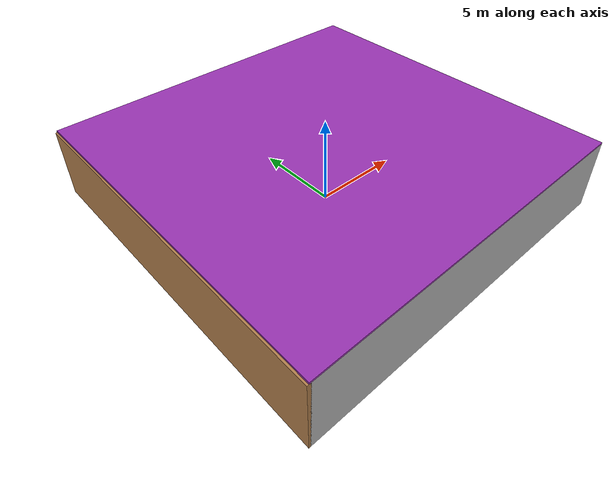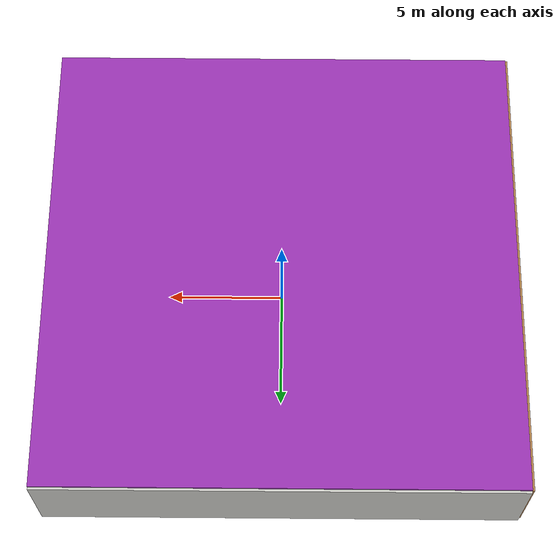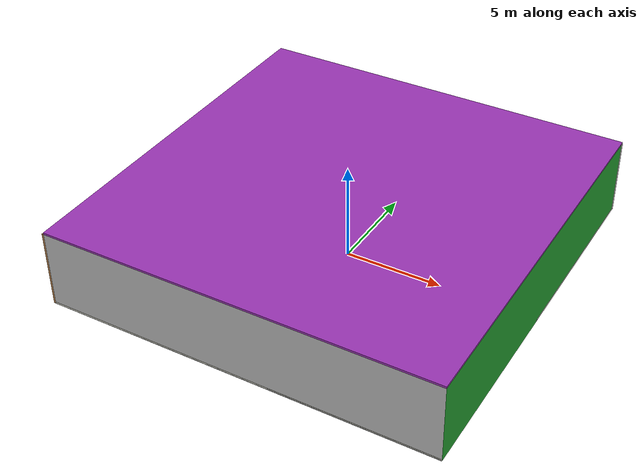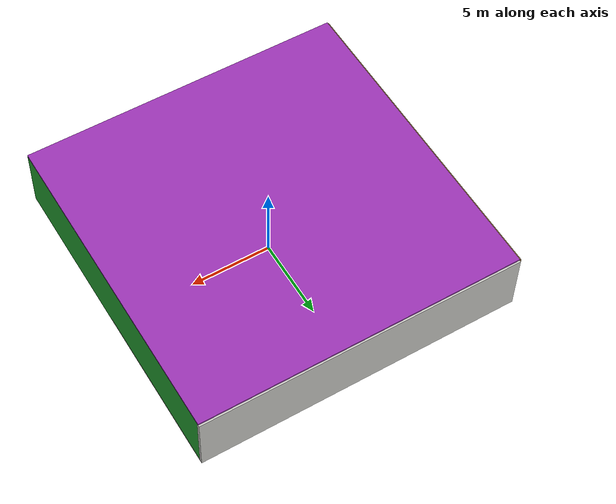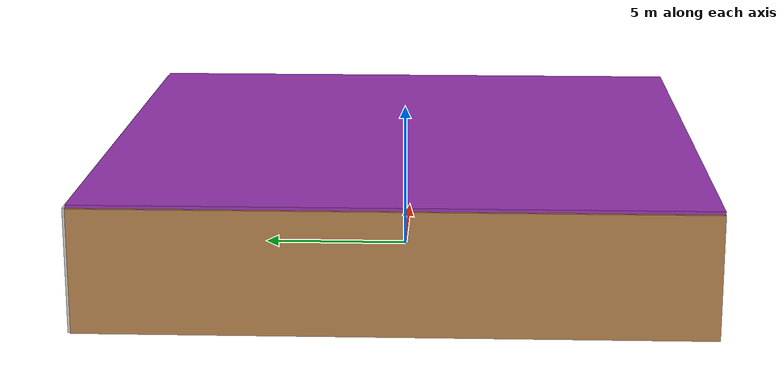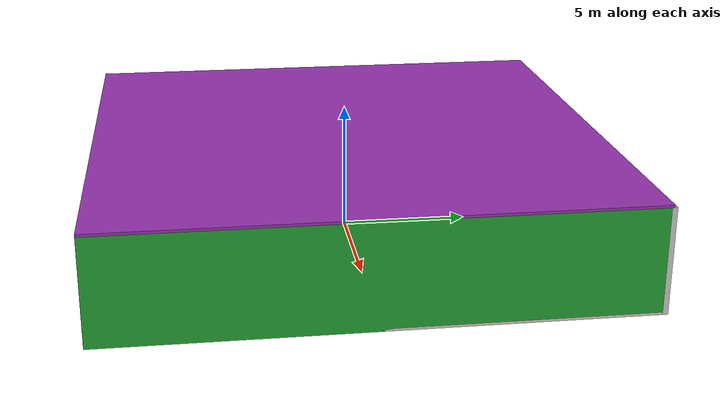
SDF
<sdf version="1.4">
 <world name="default">
  <physics type="ode">
   <max_step_size>0.001</max_step_size>
   <real_time_factor>1</real_time_factor>
   <real_time_update_rate>1000</real_time_update_rate>
   <gravity>0 0 -9.8</gravity>
  </physics>
  <scene><ambient>0.4 0.4 0.4 1</ambient><background>0.7 0.7 0.7 1</background><shadows>1</shadows></scene>
  <model name="Surrounding">
   <static>1</static>
   <link name="Ceiling">
    <collision name="Ceiling_Collision"><geometry><box><size>20 20 0.1</size></box></geometry></collision>
    <visual name="Ceiling_Visual">
     <geometry><box><size>20 20 0.1</size></box></geometry>
     <material>
      <script><uri>file://media/materials/scripts/gazebo.material</uri><name>Gazebo/PurpleGlow</name></script>
     </material>
    </visual>
    <pose>0 0 4.05 0 0 0</pose>
   </link>
   <link name="Wall_South">
    <collision name="Wall_South_Collision">
     <geometry><box><size>20 0 4</size></box></geometry>
     <pose>0 0 2 0 -0 0</pose>
    </collision>
    <visual name="Wall_South_Visual">
     <pose>0 0 2 0 -0 0</pose>
     <geometry><box><size>20 0 4</size></box></geometry>
     <material>
      <script><uri>file://media/materials/scripts/gazebo.material</uri><name>Gazebo/LightOff</name></script>
     </material>
    </visual>
    <velocity_decay><linear>0</linear><angular>0</angular></velocity_decay>
    <pose>0 -10 0 0 -0 0</pose>
   </link>
   <link name="Wall_East">
    <collision name="Wall_21_Collision">
     <geometry><box><size>20 0 4</size></box></geometry>
     <pose>0 0 2 0 -0 0</pose>
    </collision>
    <visual name="Wall_21_Visual">
     <pose>0 0 2 0 -0 0</pose>
     <geometry><box><size>20 0 4</size></box></geometry>
     <material>
      <script><uri>file://media/materials/scripts/gazebo.material</uri><name>Gazebo/GreenGlow</name></script>
     </material>
    </visual>
    <velocity_decay><linear>0</linear><angular>0</angular></velocity_decay>
    <pose>10 0 0 0 -0 1.5708</pose>
   </link>
   <link name="Wall_North">
    <collision name="Wall_22_Collision">
     <geometry><box><size>20 0.2 4</size></box></geometry>
     <pose>0 0 2 0 -0 0</pose>
    </collision>
    <visual name="Wall_22_Visual">
     <pose>0 0 2 0 -0 0</pose>
     <geometry><box><size>20 0.2 4</size></box></geometry>
     <material>
      <script><uri>file://media/materials/scripts/gazebo.material</uri><name>Gazebo/CeilingTiled</name></script>
     </material>
    </visual>
    <velocity_decay><linear>0</linear><angular>0</angular></velocity_decay>
    <pose>0 10 0 0 -0 0</pose>
   </link>
   <link name="Wall_West">
    <collision name="Wall_23_Collision">
     <geometry><box><size>20 0.2 4</size></box></geometry>
     <pose>0 0 2 0 -0 0</pose>
    </collision>
    <visual name="Wall_23_Visual">
     <pose>0 0 2 0 -0 0</pose>
     <geometry><box><size>20 0.2 4</size></box></geometry>
     <material>
      <script><uri>file://media/materials/scripts/gazebo.material</uri><name>Gazebo/WoodPallet</name></script>
     </material>
    </visual>
    <velocity_decay><linear>0</linear><angular>0</angular></velocity_decay>
    <pose>-10 0 0 0 0 -1.5708</pose>
   </link>
   <link name="Ground_link">
    <collision name="collision">
     <pose>0 0 .05 0 -0 0</pose>
     <geometry><box><size>20 20 0.1</size></box></geometry>
    </collision>
    <visual name="visual">
     <pose>0 0 .05 0 -0 0</pose>
     <geometry><box><size>20 20 0.1</size></box></geometry>
     <material>
      <script><uri>file://media/materials/scripts/gazebo.material</uri><name>Gazebo/PaintedWall</name></script>
     </material>
    </visual>
   </link>
   <static>1</static>
  </model>
  <spherical_coordinates>
   <surface_model>EARTH_WGS84</surface_model>
   <latitude_deg>0</latitude_deg>
   <longitude_deg>0</longitude_deg>
   <elevation>0</elevation>
   <heading_deg>0</heading_deg>
  </spherical_coordinates>
  <light name="lightball_0" type="diffuse">
   <diffuse>0.8 0.8 0.8 1</diffuse>
   <specular>0.2 0.2 0.2 1</specular>
   <attenuation>
    <range>100</range>
    <constant>0.7</constant>
    <linear>0.01</linear>
    <quadratic>0.001</quadratic>
   </attenuation>
   <direction>-0.5 0.1 -0.9</direction>
   <pose>-6.69292343178 -7.30086581966 0.785614542277 0 0 0</pose>
  </light>
  <light name="lightball_1" type="diffuse">
   <diffuse>0.8 0.8 0.8 1</diffuse>
   <specular>0.2 0.2 0.2 1</specular>
   <attenuation>
    <range>100</range>
    <constant>0.7</constant>
    <linear>0.01</linear>
    <quadratic>0.001</quadratic>
   </attenuation>
   <direction>-0.5 0.1 -0.9</direction>
   <pose>-8.9036598332 -5.25912701172 2.00019539121 0 0 0</pose>
  </light>
  <light name="lightball_2" type="diffuse">
   <diffuse>0.8 0.8 0.8 1</diffuse>
   <specular>0.2 0.2 0.2 1</specular>
   <attenuation>
    <range>100</range>
    <constant>0.7</constant>
    <linear>0.01</linear>
    <quadratic>0.001</quadratic>
   </attenuation>
   <direction>-0.5 0.1 -0.9</direction>
   <pose>-8.36362475668 5.41641758041 1.41876090265 0 0 0</pose>
  </light>
  <include>
   <uri>model://textured_shapes</uri>
   <pose>-3.85256344514 -4.98922631024 0 0 0 1.41434895422</pose>
  </include>
  <include>
   <uri>model://construction_cone</uri>
   <pose>-4.80818896397 0.614851547864 0 0 0 0.482537283586</pose>
  </include>
  <include><uri>model://cabinet</uri><pose>-0.499657690505 5.20824150442 0 0 0 1.01793605148</pose></include>
  <include><uri>model://cabinet</uri><pose>-1.43967987795 6.56131173765 0 0 0 0.998563609724</pose></include>
  <include>
   <uri>model://construction_cone</uri>
   <pose>2.58253110565 -5.2220600585 0 0 0 1.25846127278</pose>
  </include>
  <include>
   <uri>model://robocup_3Dsim_goal</uri>
   <pose>8.19213742396 -7.78852465406 0 0 0 1.17692666878</pose>
  </include>
 </world>
</sdf>

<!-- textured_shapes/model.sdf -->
<sdf version="1.6">
  <model name="textured_shapes">
    <pose>0 0 0.5 0 0 0</pose>
    <link name="box">
      <pose>0 -1.5 0 0 0 0</pose>
      <collision name="collision">
        <geometry>
          <box>
            <size>1 1 1</size>
          </box>
        </geometry>
      </collision>
      <visual name="visual">
        <geometry>
          <box>
            <size>1 1 1</size>
          </box>
        </geometry>
        <material>
          <script>
            <uri>model://../model_source/models/textured_shapes/materials/scripts</uri>
            <uri>model://../model_source/models/textured_shapes/materials/textures</uri>
            <name>TexturedShape/Squares</name>
          </script>
        </material>
      </visual>
    </link>
    <link name="sphere">
      <collision name="collision">
        <geometry>
          <sphere>
            <radius>0.5</radius>
          </sphere>
        </geometry>
      </collision>
      <visual name="visual">
        <geometry>
          <sphere>
            <radius>0.5</radius>
          </sphere>
        </geometry>
        <material>
          <script>
            <uri>model://../model_source/models/textured_shapes/materials/scripts</uri>
            <uri>model://../model_source/models/textured_shapes/materials/textures</uri>
            <name>TexturedShape/Squares</name>
          </script>
        </material>
      </visual>
    </link>
    <link name="cylinder">
      <pose>0 1.5 0 0 0 0</pose>
      <collision name="collision">
        <geometry>
          <cylinder>
            <radius>0.5</radius>
            <length>1</length>
          </cylinder>
        </geometry>
      </collision>
      <visual name="visual">
        <geometry>
          <cylinder>
            <radius>0.5</radius>
            <length>1</length>
          </cylinder>
        </geometry>
        <material>
          <script>
            <uri>model://../model_source/models/textured_shapes/materials/scripts</uri>
            <uri>model://../model_source/models/textured_shapes/materials/textures</uri>
            <name>TexturedShape/Squares</name>
          </script>
        </material>
      </visual>
    </link>
  </model>
</sdf>

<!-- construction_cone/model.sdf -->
<sdf version="1.5">
  <model name="Construction Cone">
    <link name="link">
      <collision name="collision">
        <geometry>
          <mesh>
            <scale>10 10 10</scale>
            <uri>file://isr-testbed/construction_cone/meshes/construction_cone.dae</uri>
          </mesh>
        </geometry>
      </collision>
      <visual name="visual">
        <geometry>
          <mesh>
            <scale>10 10 10</scale>
            <uri>file://isr-testbed/construction_cone/meshes/construction_cone.dae</uri>
          </mesh>
        </geometry>
      </visual>
    </link>
  </model>
</sdf>

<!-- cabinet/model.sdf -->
<sdf version="1.5">
  <model name="cabinet">
    <static>true</static>
    <link name="cabinet_bottom_plate">
      <inertial>
        <pose>0 0 -1 0 0 0</pose>
        <inertia>
          <ixx>2.050000</ixx>
          <ixy>0</ixy>
          <ixz>0</ixz>
          <iyy>2.050000</iyy>
          <iyz>0</iyz>
          <izz>2.050000</izz>
        </inertia>
        <mass>25.000000</mass>
      </inertial>
      <collision name="cabinet_bottom_plate_geom">
        <pose>0 0 0.010000 0 0 0</pose>
        <geometry>
          <box>
            <size>0.450000 0.450000 0.020000</size>
          </box>
        </geometry>
      </collision>
      <visual name="cabinet_bottom_plate_geom_visual">
        <pose>0 0 0.010000 0 0 0</pose>
        <geometry>
          <box>
            <size>0.450000 0.450000 0.020000</size>
          </box>
        </geometry>
        <material>
          <script>
            <uri>model://media/materials/scripts/gazebo.material</uri>
            <name>Gazebo/Wood</name>
          </script>
        </material>
      </visual>
      <collision name="cabinet_bottom_plate_geom_cabinet_back_plate">
        <pose>0.235000 0 0.510000 0 0 0</pose>
        <geometry>
          <box>
            <size>0.020000 0.450000 1.020000</size>
          </box>
        </geometry>
      </collision>
      <visual name="cabinet_bottom_plate_geom_cabinet_back_plate_visual">
        <pose>0.235000 0 0.510000 0 0 0</pose>
        <geometry>
          <box>
            <size>0.020000 0.450000 1.020000</size>
          </box>
        </geometry>
        <material>
          <script>
            <uri>model://media/materials/scripts/gazebo.material</uri>
            <name>Gazebo/Wood</name>
          </script>
        </material>
      </visual>
      <collision name="cabinet_bottom_plate_geom_cabinet_left_plate">
        <pose>0 0.235000 0.510000 0 0 0</pose>
        <geometry>
          <box>
            <size>0.450000 0.020000 1.020000</size>
          </box>
        </geometry>
      </collision>
      <visual name="cabinet_bottom_plate_geom_cabinet_left_plate_visual">
        <pose>0 0.235000 0.510000 0 0 0</pose>
        <geometry>
          <box>
            <size>0.450000 0.020000 1.020000</size>
          </box>
        </geometry>
        <material>
          <script>
            <uri>model://media/materials/scripts/gazebo.material</uri>
            <name>Gazebo/Wood</name>
          </script>
        </material>
      </visual>
      <collision name="cabinet_bottom_plate_geom_cabinet_middle_plate">
        <pose>0 0 0.510000 0 0 0</pose>
        <geometry>
          <box>
            <size>0.450000 0.450000 0.020000</size>
          </box>
        </geometry>
      </collision>
      <visual name="cabinet_bottom_plate_geom_cabinet_middle_plate_visual">
        <pose>0 0 0.510000 0 0 0</pose>
        <geometry>
          <box>
            <size>0.450000 0.450000 0.020000</size>
          </box>
        </geometry>
        <material>
          <script>
            <uri>model://media/materials/scripts/gazebo.material</uri>
            <name>Gazebo/Wood</name>
          </script>
        </material>
      </visual>
      <collision name="cabinet_bottom_plate_geom_cabinet_right_plate">
        <pose>0 -0.235000 0.510000 0 0 0</pose>
        <geometry>
          <box>
            <size>0.450000 0.020000 1.020000</size>
          </box>
        </geometry>
      </collision>
      <visual name="cabinet_bottom_plate_geom_cabinet_right_plate_visual">
        <pose>0 -0.235000 0.510000 0 0 0</pose>
        <geometry>
          <box>
            <size>0.450000 0.020000 1.020000</size>
          </box>
        </geometry>
        <material>
          <script>
            <uri>model://media/materials/scripts/gazebo.material</uri>
            <name>Gazebo/Wood</name>
          </script>
        </material>
      </visual>
      <collision name="cabinet_bottom_plate_geom_cabinet_top_plate">
        <pose>0 0 1.010000 0 0 0</pose>
        <geometry>
          <box>
            <size>0.450000 0.450000 0.020000</size>
          </box>
        </geometry>
      </collision>
      <visual name="cabinet_bottom_plate_geom_cabinet_top_plate_visual">
        <pose>0 0 1.010000 0 0 0</pose>
        <geometry>
          <box>
            <size>0.450000 0.450000 0.020000</size>
          </box>
        </geometry>
        <material>
          <script>
            <uri>model://media/materials/scripts/gazebo.material</uri>
            <name>Gazebo/Wood</name>
          </script>
        </material>
      </visual>
    </link>
  </model>
</sdf>

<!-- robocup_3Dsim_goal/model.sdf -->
<sdf version="1.5">
  <model name="robocup_3d_goal">
    <static>true</static>
    <link name="left_post">
      <pose>0 1.05 0.45 0 0 0</pose>
      <collision name="collision">
        <geometry>
          <cylinder>
            <radius>0.05</radius>
            <length>0.9</length>
          </cylinder>
        </geometry>
      </collision>
      <visual name="visual">
        <geometry>
          <cylinder>
            <radius>0.05</radius>
            <length>0.9</length>
          </cylinder>
        </geometry>
        <material>
          <script>
            <uri>file://media/materials/scripts/gazebo.material</uri>
            <name>Gazebo/ZincYellow</name>
          </script>
        </material>
      </visual>
    </link>
    <link name="left_support_horiz_lower">
      <pose>0.30 1.05 0.01 0 0 0</pose>
      <collision name="collision">
        <geometry>
          <box>
            <size>0.50 0.02 0.02</size>
          </box>
        </geometry>
      </collision>
      <visual name="visual">
        <geometry>
          <box>
            <size>0.50 0.02 0.02</size>
          </box>
        </geometry>
        <material>
          <script>
            <uri>file://media/materials/scripts/gazebo.material</uri>
            <name>Gazebo/White</name>
          </script>
        </material>
      </visual>
    </link>
    <link name="left_support_horiz_upper">
      <pose>0.30 1.05 0.79 0 0 0</pose>
      <collision name="collision">
        <geometry>
          <box>
            <size>0.50 0.02 0.02</size>
          </box>
        </geometry>
      </collision>
      <visual name="visual">
        <geometry>
          <box>
            <size>0.50 0.02 0.02</size>
          </box>
        </geometry>
        <material>
          <script>
            <uri>file://media/materials/scripts/gazebo.material</uri>
            <name>Gazebo/White</name>
          </script>
        </material>
      </visual>
    </link>
    <link name="left_support_vertical">
      <pose>0.56 1.05 0.4 0 1.5708 0</pose>
      <collision name="collision">
        <geometry>
          <box>
            <size>0.80 0.02 0.02</size>
          </box>
        </geometry>
      </collision>
      <visual name="visual">
        <geometry>
          <box>
            <size>0.80 0.02 0.02</size>
          </box>
        </geometry>
        <material>
          <script>
            <uri>file://media/materials/scripts/gazebo.material</uri>
            <name>Gazebo/White</name>
          </script>
        </material>
      </visual>
    </link>
    <link name="right_support_horiz_lower">
      <pose>0.30 -1.05 0.01 0 0 0</pose>
      <collision name="collision">
        <geometry>
          <box>
            <size>0.50 0.02 0.02</size>
          </box>
        </geometry>
      </collision>
      <visual name="visual">
        <geometry>
          <box>
            <size>0.50 0.02 0.02</size>
          </box>
        </geometry>
        <material>
          <script>
            <uri>file://media/materials/scripts/gazebo.material</uri>
            <name>Gazebo/White</name>
          </script>
        </material>
      </visual>
    </link>
    <link name="right_support_horiz_upper">
      <pose>0.30 -1.05 0.79 0 0 0</pose>
      <collision name="collision">
        <geometry>
          <box>
            <size>0.50 0.02 0.02</size>
          </box>
        </geometry>
      </collision>
      <visual name="visual">
        <geometry>
          <box>
            <size>0.50 0.02 0.02</size>
          </box>
        </geometry>
        <material>
          <script>
            <uri>file://media/materials/scripts/gazebo.material</uri>
            <name>Gazebo/White</name>
          </script>
        </material>
      </visual>
    </link>
    <link name="right_support_vertical">
      <pose>0.56 -1.05 0.4 0 1.5708 0</pose>
      <collision name="collision">
        <geometry>
          <box>
            <size>0.80 0.02 0.02</size>
          </box>
        </geometry>
      </collision>
      <visual name="visual">
        <geometry>
          <box>
            <size>0.80 0.02 0.02</size>
          </box>
        </geometry>
        <material>
          <script>
            <uri>file://media/materials/scripts/gazebo.material</uri>
            <name>Gazebo/White</name>
          </script>
        </material>
      </visual>
    </link>
    <link name="center_support_horiz_lower">
      <pose>0.56 0 0.01 0 1.5708 0</pose>
      <collision name="collision">
        <geometry>
          <box>
            <size>0.02 2.08 0.02</size>
          </box>
        </geometry>
      </collision>
      <visual name="visual">
        <geometry>
          <box>
            <size>0.02 2.08 0.02</size>
          </box>
        </geometry>
        <material>
          <script>
            <uri>file://media/materials/scripts/gazebo.material</uri>
            <name>Gazebo/White</name>
          </script>
        </material>
      </visual>
    </link>
    <link name="center_support_horiz_upper">
      <pose>0.56 0 0.79 0 1.5708 0</pose>
      <collision name="collision">
        <geometry>
          <box>
            <size>0.02 2.08 0.02</size>
          </box>
        </geometry>
      </collision>
      <visual name="visual">
        <geometry>
          <box>
            <size>0.02 2.08 0.02</size>
          </box>
        </geometry>
        <material>
          <script>
            <uri>file://media/materials/scripts/gazebo.material</uri>
            <name>Gazebo/White</name>
          </script>
        </material>
      </visual>
    </link>
    <link name="right_post">
      <pose>0 -1.05 0.45 0 0 0</pose>
      <collision name="collision">
        <geometry>
          <cylinder>
            <radius>0.05</radius>
            <length>0.9</length>
          </cylinder>
        </geometry>
      </collision>
      <visual name="visual">
        <geometry>
          <cylinder>
            <radius>0.05</radius>
            <length>0.9</length>
          </cylinder>
        </geometry>
        <material>
          <script>
            <uri>file://media/materials/scripts/gazebo.material</uri>
            <name>Gazebo/ZincYellow</name>
          </script>
        </material>
      </visual>
    </link>
    <link name="crossbar">
      <pose>0 0 0.85 1.57 1.57 0</pose>
      <collision name="collision">
        <geometry>
          <cylinder>
            <radius>0.05</radius>
            <length>2.0</length>
          </cylinder>
        </geometry>
      </collision>
      <visual name="visual">
        <geometry>
          <cylinder>
            <radius>0.05</radius>
            <length>2.0</length>
          </cylinder>
        </geometry>
        <material>
          <script>
            <uri>file://media/materials/scripts/gazebo.material</uri>
            <name>Gazebo/ZincYellow</name>
          </script>
        </material>
      </visual>
    </link>
    <link name="center_net">
      <pose>0.56 0 0.40 0 0 0</pose>
      <collision name="collision">
        <geometry>
          <box>
            <size>0.01 2.1 0.80</size>
          </box>
        </geometry>
      </collision>
      <visual name="visual">
        <geometry>
          <box>
            <size>0.01 2.1 0.80</size>
          </box>
        </geometry>
        <material>
          <script>
            <uri>model://../model_source/models/robocup09_spl_field/materials/scripts/</uri>
            <uri>model://../model_source/models/robocup09_spl_field/materials/textures/</uri>
            <name>RoboCup/Net</name>
          </script>
        </material>
      </visual>
    </link>
    <link name="left_net">
      <pose>0.30 1.05 0.40 0 0 0</pose>
      <collision name="collision">
        <geometry>
          <box>
            <size>0.50 0.01 0.76</size>
          </box>
        </geometry>
      </collision>
      <visual name="visual">
        <geometry>
          <box>
            <size>0.50 0.01 0.76</size>
          </box>
        </geometry>
        <material>
          <script>
            <uri>model://../model_source/models/robocup09_spl_field/materials/scripts/</uri>
            <uri>model://../model_source/models/robocup09_spl_field/materials/textures/</uri>
            <name>RoboCup/Net</name>
          </script>
        </material>
      </visual>
    </link>
    <link name="right_net">
      <pose>0.30 -1.05 0.40 0 0 0</pose>
      <collision name="collision">
        <geometry>
          <box>
            <size>0.50 0.01 0.76</size>
          </box>
        </geometry>
      </collision>
      <visual name="visual">
        <geometry>
          <box>
            <size>0.50 0.01 0.76</size>
          </box>
        </geometry>
        <material>
          <script>
            <uri>model://../model_source/models/robocup09_spl_field/materials/scripts/</uri>
            <uri>model://../model_source/models/robocup09_spl_field/materials/textures/</uri>
            <name>RoboCup/Net</name>
          </script>
        </material>
      </visual>
    </link>
  </model>
</sdf>
